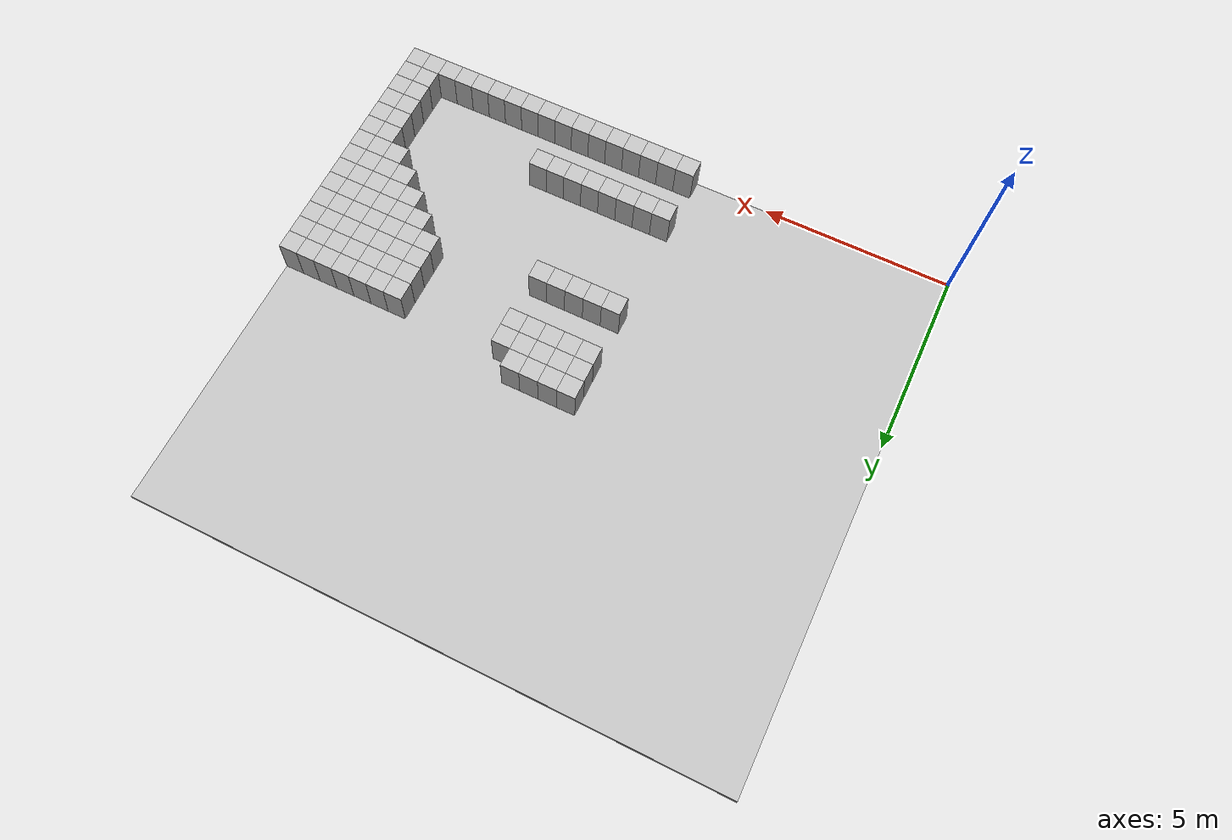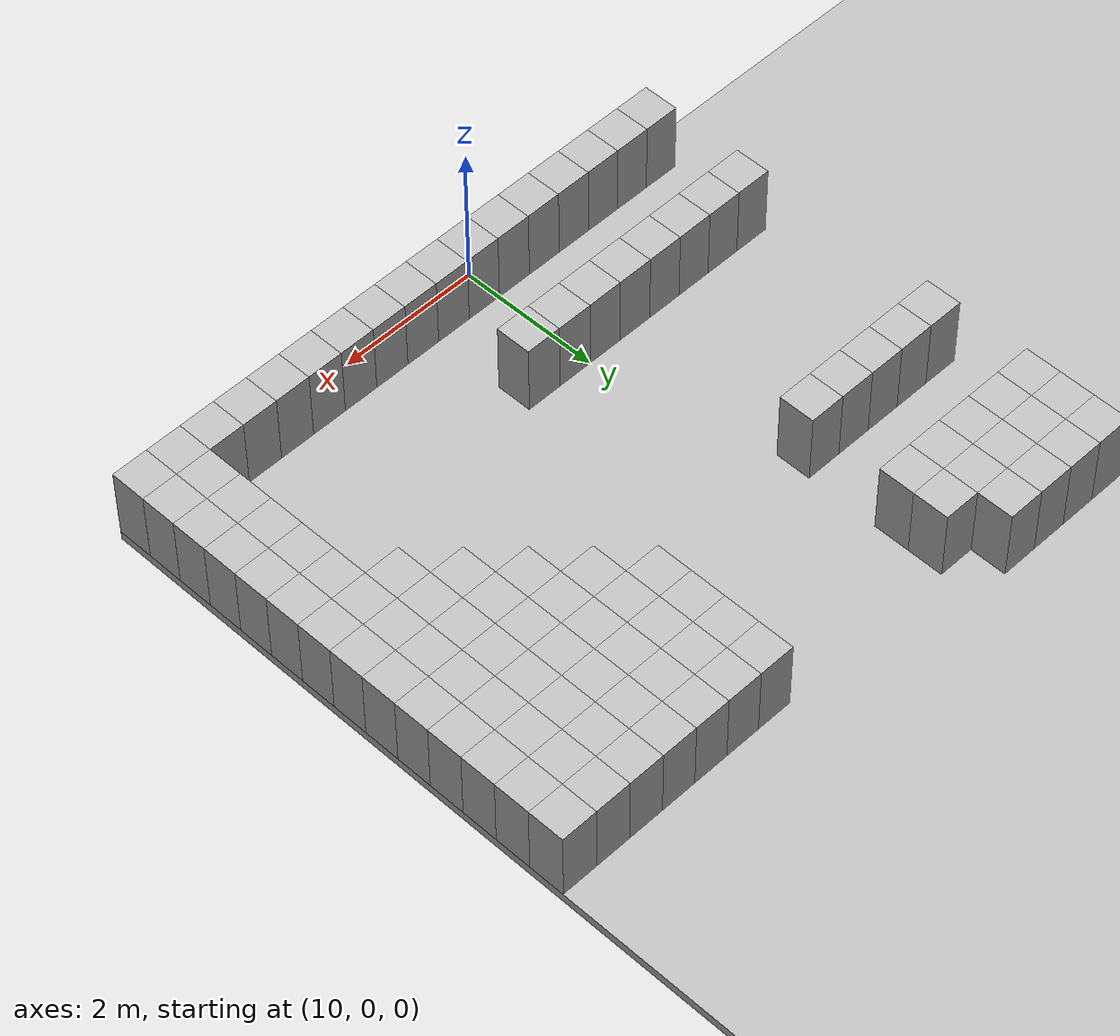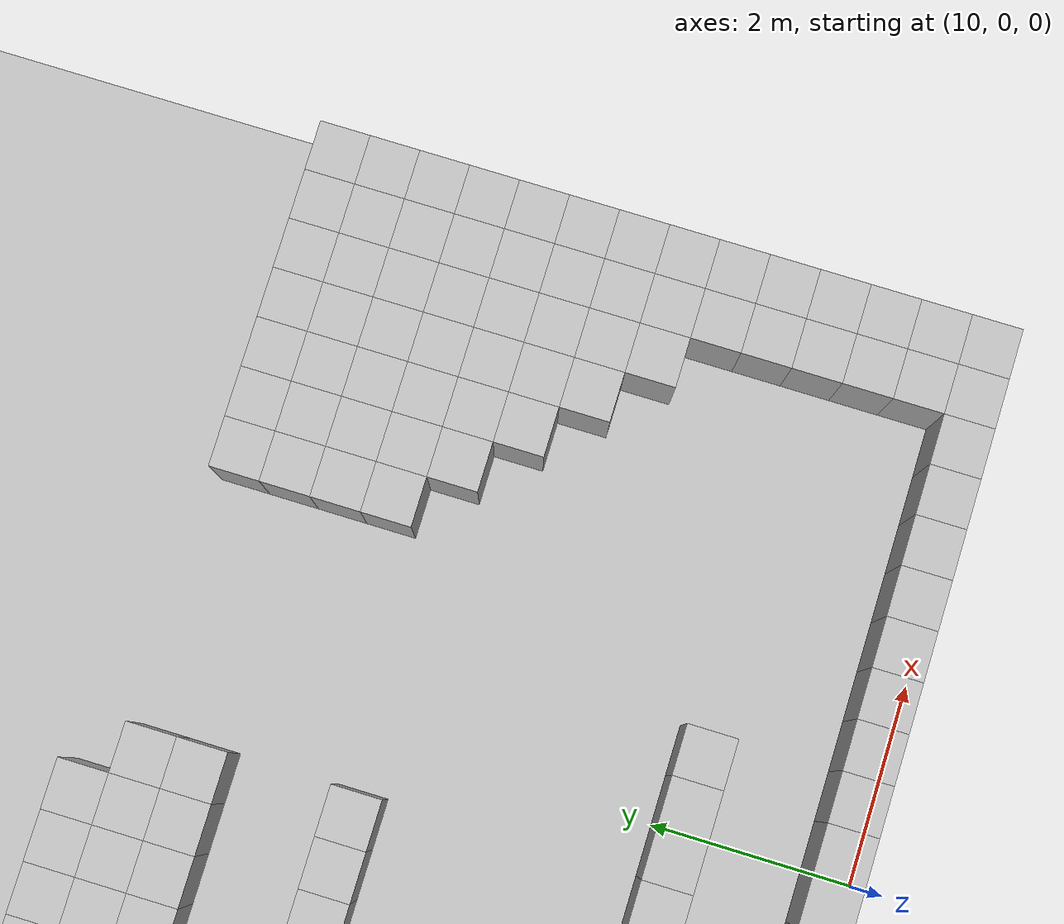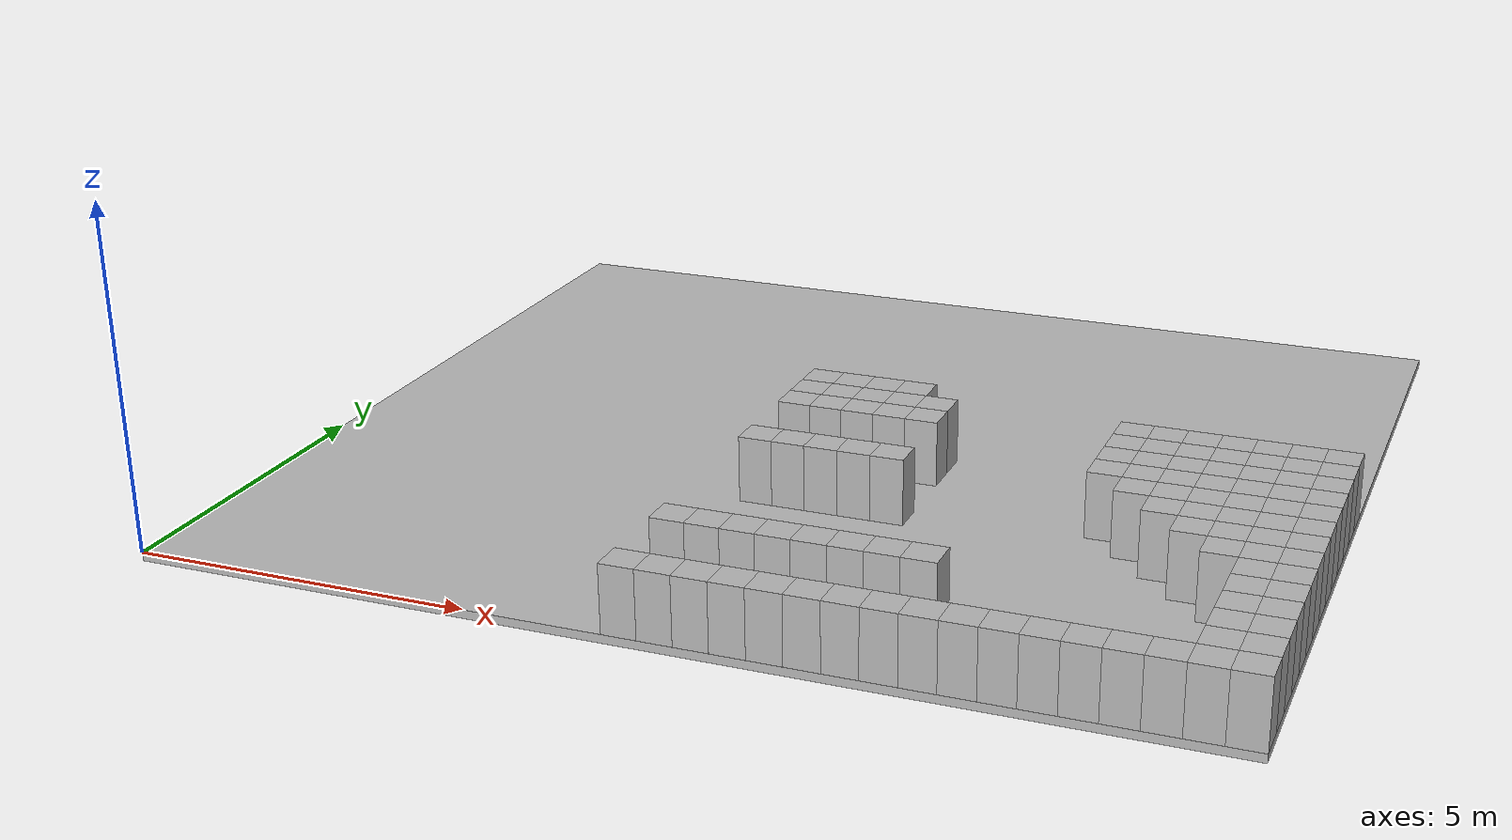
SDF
<sdf version="1.4">
 <world name="default">
  <model name="floor">
   <pose>7.75 7.0 -0.0625 0 0 0</pose>
   <static>true</static>
   <link name="link">
    <collision name="collision"><geometry><box><size>15.5 14.0 0.125</size></box></geometry></collision>
    <visual name="visual"><geometry><box><size>15.5 14.0 0.125</size></box></geometry></visual>
   </link>
  </model>
  <model name="box_14_0">
   <pose>7.25 0.25 0.5 0 0 0</pose>
   <static>true</static>
   <link name="link">
    <collision name="collision"><geometry><box><size>0.5 0.5 1.0</size></box></geometry></collision>
    <visual name="visual"><geometry><box><size>0.5 0.5 1.0</size></box></geometry></visual>
   </link>
  </model>
  <model name="box_14_3">
   <pose>7.25 1.75 0.5 0 0 0</pose>
   <static>true</static>
   <link name="link">
    <collision name="collision"><geometry><box><size>0.5 0.5 1.0</size></box></geometry></collision>
    <visual name="visual"><geometry><box><size>0.5 0.5 1.0</size></box></geometry></visual>
   </link>
  </model>
  <model name="box_14_9">
   <pose>7.25 4.75 0.5 0 0 0</pose>
   <static>true</static>
   <link name="link">
    <collision name="collision"><geometry><box><size>0.5 0.5 1.0</size></box></geometry></collision>
    <visual name="visual"><geometry><box><size>0.5 0.5 1.0</size></box></geometry></visual>
   </link>
  </model>
  <model name="box_14_12">
   <pose>7.25 6.25 0.5 0 0 0</pose>
   <static>true</static>
   <link name="link">
    <collision name="collision"><geometry><box><size>0.5 0.5 1.0</size></box></geometry></collision>
    <visual name="visual"><geometry><box><size>0.5 0.5 1.0</size></box></geometry></visual>
   </link>
  </model>
  <model name="box_14_13">
   <pose>7.25 6.75 0.5 0 0 0</pose>
   <static>true</static>
   <link name="link">
    <collision name="collision"><geometry><box><size>0.5 0.5 1.0</size></box></geometry></collision>
    <visual name="visual"><geometry><box><size>0.5 0.5 1.0</size></box></geometry></visual>
   </link>
  </model>
  <model name="box_14_14">
   <pose>7.25 7.25 0.5 0 0 0</pose>
   <static>true</static>
   <link name="link">
    <collision name="collision"><geometry><box><size>0.5 0.5 1.0</size></box></geometry></collision>
    <visual name="visual"><geometry><box><size>0.5 0.5 1.0</size></box></geometry></visual>
   </link>
  </model>
  <model name="box_15_0">
   <pose>7.75 0.25 0.5 0 0 0</pose>
   <static>true</static>
   <link name="link">
    <collision name="collision"><geometry><box><size>0.5 0.5 1.0</size></box></geometry></collision>
    <visual name="visual"><geometry><box><size>0.5 0.5 1.0</size></box></geometry></visual>
   </link>
  </model>
  <model name="box_15_3">
   <pose>7.75 1.75 0.5 0 0 0</pose>
   <static>true</static>
   <link name="link">
    <collision name="collision"><geometry><box><size>0.5 0.5 1.0</size></box></geometry></collision>
    <visual name="visual"><geometry><box><size>0.5 0.5 1.0</size></box></geometry></visual>
   </link>
  </model>
  <model name="box_15_9">
   <pose>7.75 4.75 0.5 0 0 0</pose>
   <static>true</static>
   <link name="link">
    <collision name="collision"><geometry><box><size>0.5 0.5 1.0</size></box></geometry></collision>
    <visual name="visual"><geometry><box><size>0.5 0.5 1.0</size></box></geometry></visual>
   </link>
  </model>
  <model name="box_15_12">
   <pose>7.75 6.25 0.5 0 0 0</pose>
   <static>true</static>
   <link name="link">
    <collision name="collision"><geometry><box><size>0.5 0.5 1.0</size></box></geometry></collision>
    <visual name="visual"><geometry><box><size>0.5 0.5 1.0</size></box></geometry></visual>
   </link>
  </model>
  <model name="box_15_13">
   <pose>7.75 6.75 0.5 0 0 0</pose>
   <static>true</static>
   <link name="link">
    <collision name="collision"><geometry><box><size>0.5 0.5 1.0</size></box></geometry></collision>
    <visual name="visual"><geometry><box><size>0.5 0.5 1.0</size></box></geometry></visual>
   </link>
  </model>
  <model name="box_15_14">
   <pose>7.75 7.25 0.5 0 0 0</pose>
   <static>true</static>
   <link name="link">
    <collision name="collision"><geometry><box><size>0.5 0.5 1.0</size></box></geometry></collision>
    <visual name="visual"><geometry><box><size>0.5 0.5 1.0</size></box></geometry></visual>
   </link>
  </model>
  <model name="box_16_0">
   <pose>8.25 0.25 0.5 0 0 0</pose>
   <static>true</static>
   <link name="link">
    <collision name="collision"><geometry><box><size>0.5 0.5 1.0</size></box></geometry></collision>
    <visual name="visual"><geometry><box><size>0.5 0.5 1.0</size></box></geometry></visual>
   </link>
  </model>
  <model name="box_16_3">
   <pose>8.25 1.75 0.5 0 0 0</pose>
   <static>true</static>
   <link name="link">
    <collision name="collision"><geometry><box><size>0.5 0.5 1.0</size></box></geometry></collision>
    <visual name="visual"><geometry><box><size>0.5 0.5 1.0</size></box></geometry></visual>
   </link>
  </model>
  <model name="box_16_9">
   <pose>8.25 4.75 0.5 0 0 0</pose>
   <static>true</static>
   <link name="link">
    <collision name="collision"><geometry><box><size>0.5 0.5 1.0</size></box></geometry></collision>
    <visual name="visual"><geometry><box><size>0.5 0.5 1.0</size></box></geometry></visual>
   </link>
  </model>
  <model name="box_16_12">
   <pose>8.25 6.25 0.5 0 0 0</pose>
   <static>true</static>
   <link name="link">
    <collision name="collision"><geometry><box><size>0.5 0.5 1.0</size></box></geometry></collision>
    <visual name="visual"><geometry><box><size>0.5 0.5 1.0</size></box></geometry></visual>
   </link>
  </model>
  <model name="box_16_13">
   <pose>8.25 6.75 0.5 0 0 0</pose>
   <static>true</static>
   <link name="link">
    <collision name="collision"><geometry><box><size>0.5 0.5 1.0</size></box></geometry></collision>
    <visual name="visual"><geometry><box><size>0.5 0.5 1.0</size></box></geometry></visual>
   </link>
  </model>
  <model name="box_16_14">
   <pose>8.25 7.25 0.5 0 0 0</pose>
   <static>true</static>
   <link name="link">
    <collision name="collision"><geometry><box><size>0.5 0.5 1.0</size></box></geometry></collision>
    <visual name="visual"><geometry><box><size>0.5 0.5 1.0</size></box></geometry></visual>
   </link>
  </model>
  <model name="box_17_0">
   <pose>8.75 0.25 0.5 0 0 0</pose>
   <static>true</static>
   <link name="link">
    <collision name="collision"><geometry><box><size>0.5 0.5 1.0</size></box></geometry></collision>
    <visual name="visual"><geometry><box><size>0.5 0.5 1.0</size></box></geometry></visual>
   </link>
  </model>
  <model name="box_17_3">
   <pose>8.75 1.75 0.5 0 0 0</pose>
   <static>true</static>
   <link name="link">
    <collision name="collision"><geometry><box><size>0.5 0.5 1.0</size></box></geometry></collision>
    <visual name="visual"><geometry><box><size>0.5 0.5 1.0</size></box></geometry></visual>
   </link>
  </model>
  <model name="box_17_9">
   <pose>8.75 4.75 0.5 0 0 0</pose>
   <static>true</static>
   <link name="link">
    <collision name="collision"><geometry><box><size>0.5 0.5 1.0</size></box></geometry></collision>
    <visual name="visual"><geometry><box><size>0.5 0.5 1.0</size></box></geometry></visual>
   </link>
  </model>
  <model name="box_17_12">
   <pose>8.75 6.25 0.5 0 0 0</pose>
   <static>true</static>
   <link name="link">
    <collision name="collision"><geometry><box><size>0.5 0.5 1.0</size></box></geometry></collision>
    <visual name="visual"><geometry><box><size>0.5 0.5 1.0</size></box></geometry></visual>
   </link>
  </model>
  <model name="box_17_13">
   <pose>8.75 6.75 0.5 0 0 0</pose>
   <static>true</static>
   <link name="link">
    <collision name="collision"><geometry><box><size>0.5 0.5 1.0</size></box></geometry></collision>
    <visual name="visual"><geometry><box><size>0.5 0.5 1.0</size></box></geometry></visual>
   </link>
  </model>
  <model name="box_17_14">
   <pose>8.75 7.25 0.5 0 0 0</pose>
   <static>true</static>
   <link name="link">
    <collision name="collision"><geometry><box><size>0.5 0.5 1.0</size></box></geometry></collision>
    <visual name="visual"><geometry><box><size>0.5 0.5 1.0</size></box></geometry></visual>
   </link>
  </model>
  <model name="box_18_0">
   <pose>9.25 0.25 0.5 0 0 0</pose>
   <static>true</static>
   <link name="link">
    <collision name="collision"><geometry><box><size>0.5 0.5 1.0</size></box></geometry></collision>
    <visual name="visual"><geometry><box><size>0.5 0.5 1.0</size></box></geometry></visual>
   </link>
  </model>
  <model name="box_18_3">
   <pose>9.25 1.75 0.5 0 0 0</pose>
   <static>true</static>
   <link name="link">
    <collision name="collision"><geometry><box><size>0.5 0.5 1.0</size></box></geometry></collision>
    <visual name="visual"><geometry><box><size>0.5 0.5 1.0</size></box></geometry></visual>
   </link>
  </model>
  <model name="box_18_9">
   <pose>9.25 4.75 0.5 0 0 0</pose>
   <static>true</static>
   <link name="link">
    <collision name="collision"><geometry><box><size>0.5 0.5 1.0</size></box></geometry></collision>
    <visual name="visual"><geometry><box><size>0.5 0.5 1.0</size></box></geometry></visual>
   </link>
  </model>
  <model name="box_18_12">
   <pose>9.25 6.25 0.5 0 0 0</pose>
   <static>true</static>
   <link name="link">
    <collision name="collision"><geometry><box><size>0.5 0.5 1.0</size></box></geometry></collision>
    <visual name="visual"><geometry><box><size>0.5 0.5 1.0</size></box></geometry></visual>
   </link>
  </model>
  <model name="box_18_13">
   <pose>9.25 6.75 0.5 0 0 0</pose>
   <static>true</static>
   <link name="link">
    <collision name="collision"><geometry><box><size>0.5 0.5 1.0</size></box></geometry></collision>
    <visual name="visual"><geometry><box><size>0.5 0.5 1.0</size></box></geometry></visual>
   </link>
  </model>
  <model name="box_19_0">
   <pose>9.75 0.25 0.5 0 0 0</pose>
   <static>true</static>
   <link name="link">
    <collision name="collision"><geometry><box><size>0.5 0.5 1.0</size></box></geometry></collision>
    <visual name="visual"><geometry><box><size>0.5 0.5 1.0</size></box></geometry></visual>
   </link>
  </model>
  <model name="box_19_3">
   <pose>9.75 1.75 0.5 0 0 0</pose>
   <static>true</static>
   <link name="link">
    <collision name="collision"><geometry><box><size>0.5 0.5 1.0</size></box></geometry></collision>
    <visual name="visual"><geometry><box><size>0.5 0.5 1.0</size></box></geometry></visual>
   </link>
  </model>
  <model name="box_20_0">
   <pose>10.25 0.25 0.5 0 0 0</pose>
   <static>true</static>
   <link name="link">
    <collision name="collision"><geometry><box><size>0.5 0.5 1.0</size></box></geometry></collision>
    <visual name="visual"><geometry><box><size>0.5 0.5 1.0</size></box></geometry></visual>
   </link>
  </model>
  <model name="box_20_3">
   <pose>10.25 1.75 0.5 0 0 0</pose>
   <static>true</static>
   <link name="link">
    <collision name="collision"><geometry><box><size>0.5 0.5 1.0</size></box></geometry></collision>
    <visual name="visual"><geometry><box><size>0.5 0.5 1.0</size></box></geometry></visual>
   </link>
  </model>
  <model name="box_21_0">
   <pose>10.75 0.25 0.5 0 0 0</pose>
   <static>true</static>
   <link name="link">
    <collision name="collision"><geometry><box><size>0.5 0.5 1.0</size></box></geometry></collision>
    <visual name="visual"><geometry><box><size>0.5 0.5 1.0</size></box></geometry></visual>
   </link>
  </model>
  <model name="box_21_3">
   <pose>10.75 1.75 0.5 0 0 0</pose>
   <static>true</static>
   <link name="link">
    <collision name="collision"><geometry><box><size>0.5 0.5 1.0</size></box></geometry></collision>
    <visual name="visual"><geometry><box><size>0.5 0.5 1.0</size></box></geometry></visual>
   </link>
  </model>
  <model name="box_22_0">
   <pose>11.25 0.25 0.5 0 0 0</pose>
   <static>true</static>
   <link name="link">
    <collision name="collision"><geometry><box><size>0.5 0.5 1.0</size></box></geometry></collision>
    <visual name="visual"><geometry><box><size>0.5 0.5 1.0</size></box></geometry></visual>
   </link>
  </model>
  <model name="box_23_0">
   <pose>11.75 0.25 0.5 0 0 0</pose>
   <static>true</static>
   <link name="link">
    <collision name="collision"><geometry><box><size>0.5 0.5 1.0</size></box></geometry></collision>
    <visual name="visual"><geometry><box><size>0.5 0.5 1.0</size></box></geometry></visual>
   </link>
  </model>
  <model name="box_24_0">
   <pose>12.25 0.25 0.5 0 0 0</pose>
   <static>true</static>
   <link name="link">
    <collision name="collision"><geometry><box><size>0.5 0.5 1.0</size></box></geometry></collision>
    <visual name="visual"><geometry><box><size>0.5 0.5 1.0</size></box></geometry></visual>
   </link>
  </model>
  <model name="box_24_10">
   <pose>12.25 5.25 0.5 0 0 0</pose>
   <static>true</static>
   <link name="link">
    <collision name="collision"><geometry><box><size>0.5 0.5 1.0</size></box></geometry></collision>
    <visual name="visual"><geometry><box><size>0.5 0.5 1.0</size></box></geometry></visual>
   </link>
  </model>
  <model name="box_24_11">
   <pose>12.25 5.75 0.5 0 0 0</pose>
   <static>true</static>
   <link name="link">
    <collision name="collision"><geometry><box><size>0.5 0.5 1.0</size></box></geometry></collision>
    <visual name="visual"><geometry><box><size>0.5 0.5 1.0</size></box></geometry></visual>
   </link>
  </model>
  <model name="box_24_12">
   <pose>12.25 6.25 0.5 0 0 0</pose>
   <static>true</static>
   <link name="link">
    <collision name="collision"><geometry><box><size>0.5 0.5 1.0</size></box></geometry></collision>
    <visual name="visual"><geometry><box><size>0.5 0.5 1.0</size></box></geometry></visual>
   </link>
  </model>
  <model name="box_24_13">
   <pose>12.25 6.75 0.5 0 0 0</pose>
   <static>true</static>
   <link name="link">
    <collision name="collision"><geometry><box><size>0.5 0.5 1.0</size></box></geometry></collision>
    <visual name="visual"><geometry><box><size>0.5 0.5 1.0</size></box></geometry></visual>
   </link>
  </model>
  <model name="box_25_0">
   <pose>12.75 0.25 0.5 0 0 0</pose>
   <static>true</static>
   <link name="link">
    <collision name="collision"><geometry><box><size>0.5 0.5 1.0</size></box></geometry></collision>
    <visual name="visual"><geometry><box><size>0.5 0.5 1.0</size></box></geometry></visual>
   </link>
  </model>
  <model name="box_25_9">
   <pose>12.75 4.75 0.5 0 0 0</pose>
   <static>true</static>
   <link name="link">
    <collision name="collision"><geometry><box><size>0.5 0.5 1.0</size></box></geometry></collision>
    <visual name="visual"><geometry><box><size>0.5 0.5 1.0</size></box></geometry></visual>
   </link>
  </model>
  <model name="box_25_10">
   <pose>12.75 5.25 0.5 0 0 0</pose>
   <static>true</static>
   <link name="link">
    <collision name="collision"><geometry><box><size>0.5 0.5 1.0</size></box></geometry></collision>
    <visual name="visual"><geometry><box><size>0.5 0.5 1.0</size></box></geometry></visual>
   </link>
  </model>
  <model name="box_25_11">
   <pose>12.75 5.75 0.5 0 0 0</pose>
   <static>true</static>
   <link name="link">
    <collision name="collision"><geometry><box><size>0.5 0.5 1.0</size></box></geometry></collision>
    <visual name="visual"><geometry><box><size>0.5 0.5 1.0</size></box></geometry></visual>
   </link>
  </model>
  <model name="box_25_12">
   <pose>12.75 6.25 0.5 0 0 0</pose>
   <static>true</static>
   <link name="link">
    <collision name="collision"><geometry><box><size>0.5 0.5 1.0</size></box></geometry></collision>
    <visual name="visual"><geometry><box><size>0.5 0.5 1.0</size></box></geometry></visual>
   </link>
  </model>
  <model name="box_25_13">
   <pose>12.75 6.75 0.5 0 0 0</pose>
   <static>true</static>
   <link name="link">
    <collision name="collision"><geometry><box><size>0.5 0.5 1.0</size></box></geometry></collision>
    <visual name="visual"><geometry><box><size>0.5 0.5 1.0</size></box></geometry></visual>
   </link>
  </model>
  <model name="box_26_0">
   <pose>13.25 0.25 0.5 0 0 0</pose>
   <static>true</static>
   <link name="link">
    <collision name="collision"><geometry><box><size>0.5 0.5 1.0</size></box></geometry></collision>
    <visual name="visual"><geometry><box><size>0.5 0.5 1.0</size></box></geometry></visual>
   </link>
  </model>
  <model name="box_26_8">
   <pose>13.25 4.25 0.5 0 0 0</pose>
   <static>true</static>
   <link name="link">
    <collision name="collision"><geometry><box><size>0.5 0.5 1.0</size></box></geometry></collision>
    <visual name="visual"><geometry><box><size>0.5 0.5 1.0</size></box></geometry></visual>
   </link>
  </model>
  <model name="box_26_9">
   <pose>13.25 4.75 0.5 0 0 0</pose>
   <static>true</static>
   <link name="link">
    <collision name="collision"><geometry><box><size>0.5 0.5 1.0</size></box></geometry></collision>
    <visual name="visual"><geometry><box><size>0.5 0.5 1.0</size></box></geometry></visual>
   </link>
  </model>
  <model name="box_26_10">
   <pose>13.25 5.25 0.5 0 0 0</pose>
   <static>true</static>
   <link name="link">
    <collision name="collision"><geometry><box><size>0.5 0.5 1.0</size></box></geometry></collision>
    <visual name="visual"><geometry><box><size>0.5 0.5 1.0</size></box></geometry></visual>
   </link>
  </model>
  <model name="box_26_11">
   <pose>13.25 5.75 0.5 0 0 0</pose>
   <static>true</static>
   <link name="link">
    <collision name="collision"><geometry><box><size>0.5 0.5 1.0</size></box></geometry></collision>
    <visual name="visual"><geometry><box><size>0.5 0.5 1.0</size></box></geometry></visual>
   </link>
  </model>
  <model name="box_26_12">
   <pose>13.25 6.25 0.5 0 0 0</pose>
   <static>true</static>
   <link name="link">
    <collision name="collision"><geometry><box><size>0.5 0.5 1.0</size></box></geometry></collision>
    <visual name="visual"><geometry><box><size>0.5 0.5 1.0</size></box></geometry></visual>
   </link>
  </model>
  <model name="box_26_13">
   <pose>13.25 6.75 0.5 0 0 0</pose>
   <static>true</static>
   <link name="link">
    <collision name="collision"><geometry><box><size>0.5 0.5 1.0</size></box></geometry></collision>
    <visual name="visual"><geometry><box><size>0.5 0.5 1.0</size></box></geometry></visual>
   </link>
  </model>
  <model name="box_27_0">
   <pose>13.75 0.25 0.5 0 0 0</pose>
   <static>true</static>
   <link name="link">
    <collision name="collision"><geometry><box><size>0.5 0.5 1.0</size></box></geometry></collision>
    <visual name="visual"><geometry><box><size>0.5 0.5 1.0</size></box></geometry></visual>
   </link>
  </model>
  <model name="box_27_7">
   <pose>13.75 3.75 0.5 0 0 0</pose>
   <static>true</static>
   <link name="link">
    <collision name="collision"><geometry><box><size>0.5 0.5 1.0</size></box></geometry></collision>
    <visual name="visual"><geometry><box><size>0.5 0.5 1.0</size></box></geometry></visual>
   </link>
  </model>
  <model name="box_27_8">
   <pose>13.75 4.25 0.5 0 0 0</pose>
   <static>true</static>
   <link name="link">
    <collision name="collision"><geometry><box><size>0.5 0.5 1.0</size></box></geometry></collision>
    <visual name="visual"><geometry><box><size>0.5 0.5 1.0</size></box></geometry></visual>
   </link>
  </model>
  <model name="box_27_9">
   <pose>13.75 4.75 0.5 0 0 0</pose>
   <static>true</static>
   <link name="link">
    <collision name="collision"><geometry><box><size>0.5 0.5 1.0</size></box></geometry></collision>
    <visual name="visual"><geometry><box><size>0.5 0.5 1.0</size></box></geometry></visual>
   </link>
  </model>
  <model name="box_27_10">
   <pose>13.75 5.25 0.5 0 0 0</pose>
   <static>true</static>
   <link name="link">
    <collision name="collision"><geometry><box><size>0.5 0.5 1.0</size></box></geometry></collision>
    <visual name="visual"><geometry><box><size>0.5 0.5 1.0</size></box></geometry></visual>
   </link>
  </model>
  <model name="box_27_11">
   <pose>13.75 5.75 0.5 0 0 0</pose>
   <static>true</static>
   <link name="link">
    <collision name="collision"><geometry><box><size>0.5 0.5 1.0</size></box></geometry></collision>
    <visual name="visual"><geometry><box><size>0.5 0.5 1.0</size></box></geometry></visual>
   </link>
  </model>
  <model name="box_27_12">
   <pose>13.75 6.25 0.5 0 0 0</pose>
   <static>true</static>
   <link name="link">
    <collision name="collision"><geometry><box><size>0.5 0.5 1.0</size></box></geometry></collision>
    <visual name="visual"><geometry><box><size>0.5 0.5 1.0</size></box></geometry></visual>
   </link>
  </model>
  <model name="box_27_13">
   <pose>13.75 6.75 0.5 0 0 0</pose>
   <static>true</static>
   <link name="link">
    <collision name="collision"><geometry><box><size>0.5 0.5 1.0</size></box></geometry></collision>
    <visual name="visual"><geometry><box><size>0.5 0.5 1.0</size></box></geometry></visual>
   </link>
  </model>
  <model name="box_28_0">
   <pose>14.25 0.25 0.5 0 0 0</pose>
   <static>true</static>
   <link name="link">
    <collision name="collision"><geometry><box><size>0.5 0.5 1.0</size></box></geometry></collision>
    <visual name="visual"><geometry><box><size>0.5 0.5 1.0</size></box></geometry></visual>
   </link>
  </model>
  <model name="box_28_6">
   <pose>14.25 3.25 0.5 0 0 0</pose>
   <static>true</static>
   <link name="link">
    <collision name="collision"><geometry><box><size>0.5 0.5 1.0</size></box></geometry></collision>
    <visual name="visual"><geometry><box><size>0.5 0.5 1.0</size></box></geometry></visual>
   </link>
  </model>
  <model name="box_28_7">
   <pose>14.25 3.75 0.5 0 0 0</pose>
   <static>true</static>
   <link name="link">
    <collision name="collision"><geometry><box><size>0.5 0.5 1.0</size></box></geometry></collision>
    <visual name="visual"><geometry><box><size>0.5 0.5 1.0</size></box></geometry></visual>
   </link>
  </model>
  <model name="box_28_8">
   <pose>14.25 4.25 0.5 0 0 0</pose>
   <static>true</static>
   <link name="link">
    <collision name="collision"><geometry><box><size>0.5 0.5 1.0</size></box></geometry></collision>
    <visual name="visual"><geometry><box><size>0.5 0.5 1.0</size></box></geometry></visual>
   </link>
  </model>
  <model name="box_28_9">
   <pose>14.25 4.75 0.5 0 0 0</pose>
   <static>true</static>
   <link name="link">
    <collision name="collision"><geometry><box><size>0.5 0.5 1.0</size></box></geometry></collision>
    <visual name="visual"><geometry><box><size>0.5 0.5 1.0</size></box></geometry></visual>
   </link>
  </model>
  <model name="box_28_10">
   <pose>14.25 5.25 0.5 0 0 0</pose>
   <static>true</static>
   <link name="link">
    <collision name="collision"><geometry><box><size>0.5 0.5 1.0</size></box></geometry></collision>
    <visual name="visual"><geometry><box><size>0.5 0.5 1.0</size></box></geometry></visual>
   </link>
  </model>
  <model name="box_28_11">
   <pose>14.25 5.75 0.5 0 0 0</pose>
   <static>true</static>
   <link name="link">
    <collision name="collision"><geometry><box><size>0.5 0.5 1.0</size></box></geometry></collision>
    <visual name="visual"><geometry><box><size>0.5 0.5 1.0</size></box></geometry></visual>
   </link>
  </model>
  <model name="box_28_12">
   <pose>14.25 6.25 0.5 0 0 0</pose>
   <static>true</static>
   <link name="link">
    <collision name="collision"><geometry><box><size>0.5 0.5 1.0</size></box></geometry></collision>
    <visual name="visual"><geometry><box><size>0.5 0.5 1.0</size></box></geometry></visual>
   </link>
  </model>
  <model name="box_28_13">
   <pose>14.25 6.75 0.5 0 0 0</pose>
   <static>true</static>
   <link name="link">
    <collision name="collision"><geometry><box><size>0.5 0.5 1.0</size></box></geometry></collision>
    <visual name="visual"><geometry><box><size>0.5 0.5 1.0</size></box></geometry></visual>
   </link>
  </model>
  <model name="box_29_0">
   <pose>14.75 0.25 0.5 0 0 0</pose>
   <static>true</static>
   <link name="link">
    <collision name="collision"><geometry><box><size>0.5 0.5 1.0</size></box></geometry></collision>
    <visual name="visual"><geometry><box><size>0.5 0.5 1.0</size></box></geometry></visual>
   </link>
  </model>
  <model name="box_29_1">
   <pose>14.75 0.75 0.5 0 0 0</pose>
   <static>true</static>
   <link name="link">
    <collision name="collision"><geometry><box><size>0.5 0.5 1.0</size></box></geometry></collision>
    <visual name="visual"><geometry><box><size>0.5 0.5 1.0</size></box></geometry></visual>
   </link>
  </model>
  <model name="box_29_2">
   <pose>14.75 1.25 0.5 0 0 0</pose>
   <static>true</static>
   <link name="link">
    <collision name="collision"><geometry><box><size>0.5 0.5 1.0</size></box></geometry></collision>
    <visual name="visual"><geometry><box><size>0.5 0.5 1.0</size></box></geometry></visual>
   </link>
  </model>
  <model name="box_29_3">
   <pose>14.75 1.75 0.5 0 0 0</pose>
   <static>true</static>
   <link name="link">
    <collision name="collision"><geometry><box><size>0.5 0.5 1.0</size></box></geometry></collision>
    <visual name="visual"><geometry><box><size>0.5 0.5 1.0</size></box></geometry></visual>
   </link>
  </model>
  <model name="box_29_4">
   <pose>14.75 2.25 0.5 0 0 0</pose>
   <static>true</static>
   <link name="link">
    <collision name="collision"><geometry><box><size>0.5 0.5 1.0</size></box></geometry></collision>
    <visual name="visual"><geometry><box><size>0.5 0.5 1.0</size></box></geometry></visual>
   </link>
  </model>
  <model name="box_29_5">
   <pose>14.75 2.75 0.5 0 0 0</pose>
   <static>true</static>
   <link name="link">
    <collision name="collision"><geometry><box><size>0.5 0.5 1.0</size></box></geometry></collision>
    <visual name="visual"><geometry><box><size>0.5 0.5 1.0</size></box></geometry></visual>
   </link>
  </model>
  <model name="box_29_6">
   <pose>14.75 3.25 0.5 0 0 0</pose>
   <static>true</static>
   <link name="link">
    <collision name="collision"><geometry><box><size>0.5 0.5 1.0</size></box></geometry></collision>
    <visual name="visual"><geometry><box><size>0.5 0.5 1.0</size></box></geometry></visual>
   </link>
  </model>
  <model name="box_29_7">
   <pose>14.75 3.75 0.5 0 0 0</pose>
   <static>true</static>
   <link name="link">
    <collision name="collision"><geometry><box><size>0.5 0.5 1.0</size></box></geometry></collision>
    <visual name="visual"><geometry><box><size>0.5 0.5 1.0</size></box></geometry></visual>
   </link>
  </model>
  <model name="box_29_8">
   <pose>14.75 4.25 0.5 0 0 0</pose>
   <static>true</static>
   <link name="link">
    <collision name="collision"><geometry><box><size>0.5 0.5 1.0</size></box></geometry></collision>
    <visual name="visual"><geometry><box><size>0.5 0.5 1.0</size></box></geometry></visual>
   </link>
  </model>
  <model name="box_29_9">
   <pose>14.75 4.75 0.5 0 0 0</pose>
   <static>true</static>
   <link name="link">
    <collision name="collision"><geometry><box><size>0.5 0.5 1.0</size></box></geometry></collision>
    <visual name="visual"><geometry><box><size>0.5 0.5 1.0</size></box></geometry></visual>
   </link>
  </model>
  <model name="box_29_10">
   <pose>14.75 5.25 0.5 0 0 0</pose>
   <static>true</static>
   <link name="link">
    <collision name="collision"><geometry><box><size>0.5 0.5 1.0</size></box></geometry></collision>
    <visual name="visual"><geometry><box><size>0.5 0.5 1.0</size></box></geometry></visual>
   </link>
  </model>
  <model name="box_29_11">
   <pose>14.75 5.75 0.5 0 0 0</pose>
   <static>true</static>
   <link name="link">
    <collision name="collision"><geometry><box><size>0.5 0.5 1.0</size></box></geometry></collision>
    <visual name="visual"><geometry><box><size>0.5 0.5 1.0</size></box></geometry></visual>
   </link>
  </model>
  <model name="box_29_12">
   <pose>14.75 6.25 0.5 0 0 0</pose>
   <static>true</static>
   <link name="link">
    <collision name="collision"><geometry><box><size>0.5 0.5 1.0</size></box></geometry></collision>
    <visual name="visual"><geometry><box><size>0.5 0.5 1.0</size></box></geometry></visual>
   </link>
  </model>
  <model name="box_29_13">
   <pose>14.75 6.75 0.5 0 0 0</pose>
   <static>true</static>
   <link name="link">
    <collision name="collision"><geometry><box><size>0.5 0.5 1.0</size></box></geometry></collision>
    <visual name="visual"><geometry><box><size>0.5 0.5 1.0</size></box></geometry></visual>
   </link>
  </model>
  <model name="box_30_0">
   <pose>15.25 0.25 0.5 0 0 0</pose>
   <static>true</static>
   <link name="link">
    <collision name="collision"><geometry><box><size>0.5 0.5 1.0</size></box></geometry></collision>
    <visual name="visual"><geometry><box><size>0.5 0.5 1.0</size></box></geometry></visual>
   </link>
  </model>
  <model name="box_30_1">
   <pose>15.25 0.75 0.5 0 0 0</pose>
   <static>true</static>
   <link name="link">
    <collision name="collision"><geometry><box><size>0.5 0.5 1.0</size></box></geometry></collision>
    <visual name="visual"><geometry><box><size>0.5 0.5 1.0</size></box></geometry></visual>
   </link>
  </model>
  <model name="box_30_2">
   <pose>15.25 1.25 0.5 0 0 0</pose>
   <static>true</static>
   <link name="link">
    <collision name="collision"><geometry><box><size>0.5 0.5 1.0</size></box></geometry></collision>
    <visual name="visual"><geometry><box><size>0.5 0.5 1.0</size></box></geometry></visual>
   </link>
  </model>
  <model name="box_30_3">
   <pose>15.25 1.75 0.5 0 0 0</pose>
   <static>true</static>
   <link name="link">
    <collision name="collision"><geometry><box><size>0.5 0.5 1.0</size></box></geometry></collision>
    <visual name="visual"><geometry><box><size>0.5 0.5 1.0</size></box></geometry></visual>
   </link>
  </model>
  <model name="box_30_4">
   <pose>15.25 2.25 0.5 0 0 0</pose>
   <static>true</static>
   <link name="link">
    <collision name="collision"><geometry><box><size>0.5 0.5 1.0</size></box></geometry></collision>
    <visual name="visual"><geometry><box><size>0.5 0.5 1.0</size></box></geometry></visual>
   </link>
  </model>
  <model name="box_30_5">
   <pose>15.25 2.75 0.5 0 0 0</pose>
   <static>true</static>
   <link name="link">
    <collision name="collision"><geometry><box><size>0.5 0.5 1.0</size></box></geometry></collision>
    <visual name="visual"><geometry><box><size>0.5 0.5 1.0</size></box></geometry></visual>
   </link>
  </model>
  <model name="box_30_6">
   <pose>15.25 3.25 0.5 0 0 0</pose>
   <static>true</static>
   <link name="link">
    <collision name="collision"><geometry><box><size>0.5 0.5 1.0</size></box></geometry></collision>
    <visual name="visual"><geometry><box><size>0.5 0.5 1.0</size></box></geometry></visual>
   </link>
  </model>
  <model name="box_30_7">
   <pose>15.25 3.75 0.5 0 0 0</pose>
   <static>true</static>
   <link name="link">
    <collision name="collision"><geometry><box><size>0.5 0.5 1.0</size></box></geometry></collision>
    <visual name="visual"><geometry><box><size>0.5 0.5 1.0</size></box></geometry></visual>
   </link>
  </model>
  <model name="box_30_8">
   <pose>15.25 4.25 0.5 0 0 0</pose>
   <static>true</static>
   <link name="link">
    <collision name="collision"><geometry><box><size>0.5 0.5 1.0</size></box></geometry></collision>
    <visual name="visual"><geometry><box><size>0.5 0.5 1.0</size></box></geometry></visual>
   </link>
  </model>
  <model name="box_30_9">
   <pose>15.25 4.75 0.5 0 0 0</pose>
   <static>true</static>
   <link name="link">
    <collision name="collision"><geometry><box><size>0.5 0.5 1.0</size></box></geometry></collision>
    <visual name="visual"><geometry><box><size>0.5 0.5 1.0</size></box></geometry></visual>
   </link>
  </model>
  <model name="box_30_10">
   <pose>15.25 5.25 0.5 0 0 0</pose>
   <static>true</static>
   <link name="link">
    <collision name="collision"><geometry><box><size>0.5 0.5 1.0</size></box></geometry></collision>
    <visual name="visual"><geometry><box><size>0.5 0.5 1.0</size></box></geometry></visual>
   </link>
  </model>
  <model name="box_30_11">
   <pose>15.25 5.75 0.5 0 0 0</pose>
   <static>true</static>
   <link name="link">
    <collision name="collision"><geometry><box><size>0.5 0.5 1.0</size></box></geometry></collision>
    <visual name="visual"><geometry><box><size>0.5 0.5 1.0</size></box></geometry></visual>
   </link>
  </model>
  <model name="box_30_12">
   <pose>15.25 6.25 0.5 0 0 0</pose>
   <static>true</static>
   <link name="link">
    <collision name="collision"><geometry><box><size>0.5 0.5 1.0</size></box></geometry></collision>
    <visual name="visual"><geometry><box><size>0.5 0.5 1.0</size></box></geometry></visual>
   </link>
  </model>
  <model name="box_30_13">
   <pose>15.25 6.75 0.5 0 0 0</pose>
   <static>true</static>
   <link name="link">
    <collision name="collision"><geometry><box><size>0.5 0.5 1.0</size></box></geometry></collision>
    <visual name="visual"><geometry><box><size>0.5 0.5 1.0</size></box></geometry></visual>
   </link>
  </model>
 </world>
</sdf>
